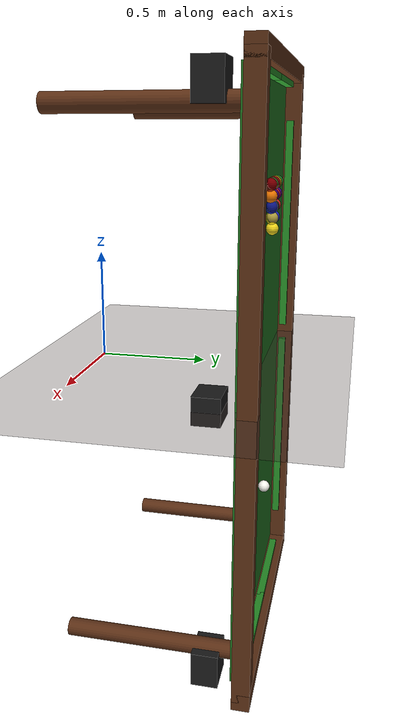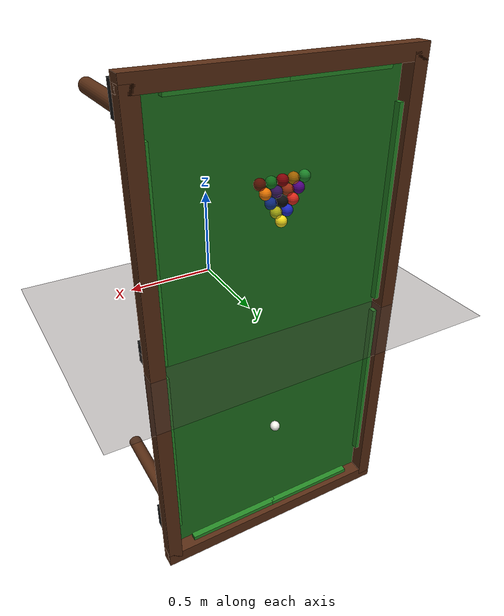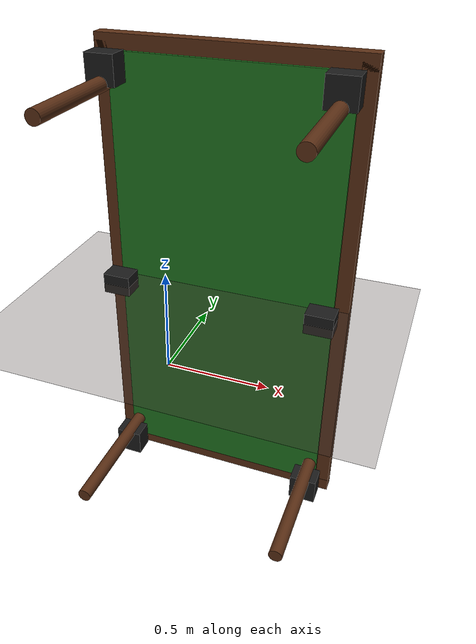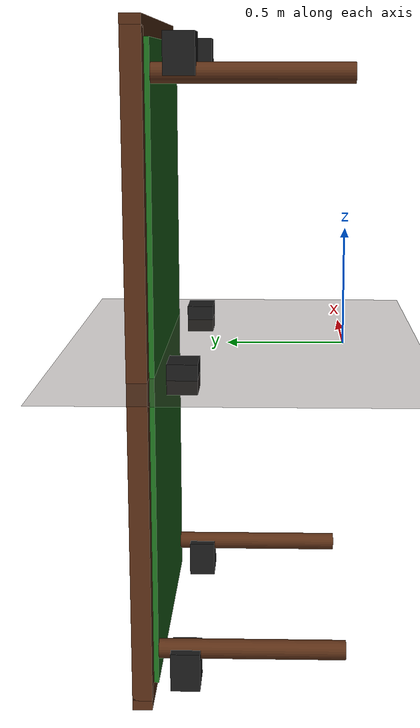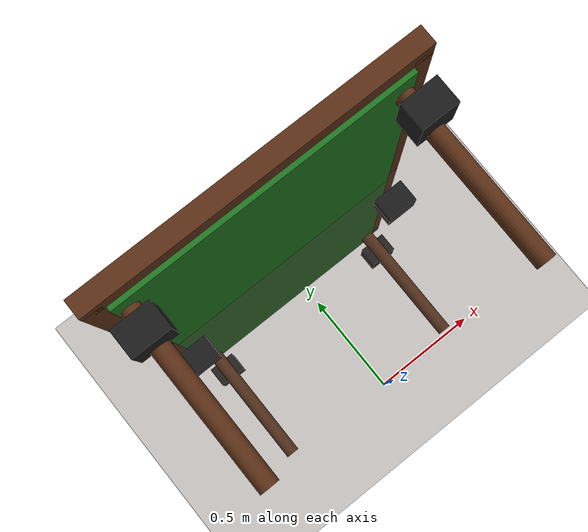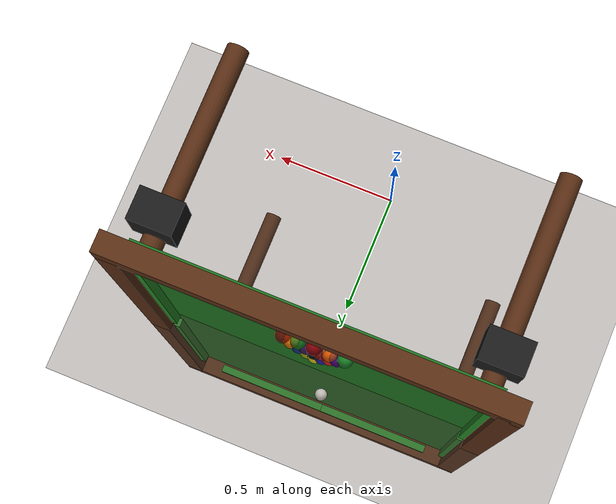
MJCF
<mujoco model="pool_table">

  <!-- SIMULATION OPTIONS                                               -->
  <option timestep="0.001" gravity="0 -9.81 0" integrator="implicit"
          cone="elliptic" noslip_iterations="10">
    <!--
      Small timestep (1ms) for accurate ball-ball collisions
      Elliptic friction cone for realistic rolling
      noslip_iterations prevents balls from sliding when they should roll
    -->
  </option>

  <size nconmax="500" njmax="1000"/>

  <!-- DEFAULTS                                                         -->
  <default>
    <default class="ball">
      <geom type="sphere" size="0.028575"
            mass="0.170"
            friction="0.2 0.005 0.001"
            solref="0.001 1.0"
            solimp="0.95 0.99 0.001"
            condim="6"
            priority="1"
            contype="1" conaffinity="1"/>
      <!--
        friction: sliding=0.2, torsional=0.005, rolling=0.001
        condim=6: full 6D contact (sliding + torsional + rolling)
        This is critical for spin/English to work correctly
      -->
      <joint type="free" damping="0.001" armature="0.00001"/>
    </default>

    <default class="cushion">
      <geom type="box"
            friction="0.4 0.01 0.002"
            solref="0.0005 0.9"
            solimp="0.9 0.95 0.001"
            condim="3"
            contype="1" conaffinity="1"
            rgba="0.15 0.55 0.15 1"/>
      <!--
        Cushion rubber: higher friction, some energy loss
        solref tuned for ~0.85 coefficient of restitution
      -->
    </default>

    <default class="rail">
      <geom type="box"
            contype="1" conaffinity="1"
            friction="0.5 0.01 0.002"
            rgba="0.35 0.18 0.08 1"/>
    </default>

    <default class="slate">
      <geom type="box"
            contype="1" conaffinity="1"
            friction="0.2 0.005 0.001"
            condim="6"
            rgba="0.12 0.45 0.12 1"/>
      <!-- Felt-covered slate: same friction model as ball default -->
    </default>
  </default>

  <!-- ASSETS (replace with your Blender meshes for visual rendering)   -->

  <!-- WORLD                                                            -->
  <worldbody>

    <!-- Floor (below table) -->
    <geom name="floor" type="plane" size="3 3 0.1" pos="0 0 0"
          rgba="0.25 0.2 0.18 1" contype="2" conaffinity="2"/>

    <!-- TABLE BED (slate + felt)                                      -->
    <!-- Playing surface at Y = 0.78m                                  -->
    <geom name="slate" class="slate"
          pos="0 0.77 0" size="0.645 0.01 1.28"/>
    <!--
      size = half-extents: 0.645 = 1.29m/2 (slightly wider than playing area)
      Slate is 2cm thick, top surface at Y = 0.78
    -->

    <!-- CUSHIONS — The rubber bumpers balls bounce off                -->
    <!-- Positioned at ball-center height, angled slightly inward      -->
    <!-- Cushion nose height = 63.5% of ball diameter = 0.0363m       -->
    <!-- Ball center height above slate = 0.028575m (one radius)      -->

    <!-- Long cushions (along Z axis, left and right) -->
    <!-- Each split into 2 segments with gaps for side pockets -->

    <!-- Left cushion, foot half (toward -Z) -->
    <geom name="cushion_L_foot" class="cushion"
          pos="-0.635 0.8085 -0.57" size="0.015 0.018 0.53"/>

    <!-- Left cushion, head half (toward +Z) -->
    <geom name="cushion_L_head" class="cushion"
          pos="-0.635 0.8085 0.57" size="0.015 0.018 0.53"/>

    <!-- Right cushion, foot half -->
    <geom name="cushion_R_foot" class="cushion"
          pos="0.635 0.8085 -0.57" size="0.015 0.018 0.53"/>

    <!-- Right cushion, head half -->
    <geom name="cushion_R_head" class="cushion"
          pos="0.635 0.8085 0.57" size="0.015 0.018 0.53"/>

    <!-- Short cushions (along X axis, foot and head) -->
    <!-- Each split into 2 segments with gaps for corner pockets -->

    <!-- Foot rail cushion (-Z end), left half -->
    <geom name="cushion_foot_L" class="cushion"
          pos="-0.27 0.8085 -1.27" size="0.28 0.018 0.015"/>

    <!-- Foot rail cushion, right half -->
    <geom name="cushion_foot_R" class="cushion"
          pos="0.27 0.8085 -1.27" size="0.28 0.018 0.015"/>

    <!-- Head rail cushion (+Z end), left half -->
    <geom name="cushion_head_L" class="cushion"
          pos="-0.27 0.8085 1.27" size="0.28 0.018 0.015"/>

    <!-- Head rail cushion, right half -->
    <geom name="cushion_head_R" class="cushion"
          pos="0.27 0.8085 1.27" size="0.28 0.018 0.015"/>

    <!-- RAILS — The wooden frame around the table                     -->
    <!-- These are purely structural, balls shouldn't reach them       -->

    <!-- Left rail -->
    <geom name="rail_L" class="rail"
          pos="-0.685 0.82 0" size="0.04 0.04 1.32"/>

    <!-- Right rail -->
    <geom name="rail_R" class="rail"
          pos="0.685 0.82 0" size="0.04 0.04 1.32"/>

    <!-- Foot rail -->
    <geom name="rail_foot" class="rail"
          pos="0 0.82 -1.32" size="0.725 0.04 0.04"/>

    <!-- Head rail -->
    <geom name="rail_head" class="rail"
          pos="0 0.82 1.32" size="0.725 0.04 0.04"/>

    <!-- POCKET CATCHERS — Angled ramps below pocket openings          -->
    <!-- Balls that enter pocket gaps fall off the table bed           -->
    <!-- and are caught by these                                       -->

    <!-- Corner pocket catchers (4) — angled boxes below table surface -->
    <geom name="catch_foot_L" type="box" pos="-0.60 0.65 -1.22" size="0.08 0.06 0.08"
          rgba="0.1 0.1 0.1 1" contype="2" conaffinity="1"/>
    <geom name="catch_foot_R" type="box" pos="0.60 0.65 -1.22" size="0.08 0.06 0.08"
          rgba="0.1 0.1 0.1 1" contype="2" conaffinity="1"/>
    <geom name="catch_head_L" type="box" pos="-0.60 0.65 1.22" size="0.08 0.06 0.08"
          rgba="0.1 0.1 0.1 1" contype="2" conaffinity="1"/>
    <geom name="catch_head_R" type="box" pos="0.60 0.65 1.22" size="0.08 0.06 0.08"
          rgba="0.1 0.1 0.1 1" contype="2" conaffinity="1"/>

    <!-- Side pocket catchers (2) -->
    <geom name="catch_side_L" type="box" pos="-0.60 0.65 0" size="0.08 0.06 0.06"
          rgba="0.1 0.1 0.1 1" contype="2" conaffinity="1"/>
    <geom name="catch_side_R" type="box" pos="0.60 0.65 0" size="0.08 0.06 0.06"
          rgba="0.1 0.1 0.1 1" contype="2" conaffinity="1"/>

    <!-- TABLE LEGS (4) — decorative, not physics-critical             -->
    <geom name="leg_FL" type="cylinder" size="0.04" fromto="-0.60 0 -1.15  -0.60 0.76 -1.15"
          rgba="0.35 0.18 0.08 1" contype="0" conaffinity="0"/>
    <geom name="leg_FR" type="cylinder" size="0.04" fromto="0.60 0 -1.15   0.60 0.76 -1.15"
          rgba="0.35 0.18 0.08 1" contype="0" conaffinity="0"/>
    <geom name="leg_HL" type="cylinder" size="0.04" fromto="-0.60 0 1.15   -0.60 0.76 1.15"
          rgba="0.35 0.18 0.08 1" contype="0" conaffinity="0"/>
    <geom name="leg_HR" type="cylinder" size="0.04" fromto="0.60 0 1.15    0.60 0.76 1.15"
          rgba="0.35 0.18 0.08 1" contype="0" conaffinity="0"/>

    <!-- BALLS                                                         -->
    <!-- Standard 8-ball rack:                                         -->
    <!--   Cue ball at foot spot: (0, 0.8086, -0.635)                 -->
    <!--   Rack apex (1-ball): (0, 0.8086, 0.635)                     -->
    <!--   8-ball in center of third row                               -->
    <!--   Ball spacing: 0.05715m (one ball diameter) + tiny gap       -->
    <!--   Row spacing along Z: 0.0495 (diameter × cos(30°))          -->
    <!--   Column spacing along X: 0.05715 (one diameter)             -->
    <!--   Each row offsets X by ±0.028575 (half ball)                -->
    <!-- Y position: slate top (0.78) + ball radius (0.028575)        -->

    <!-- Cue Ball (white) — at foot spot -->
    <body name="cue_ball" pos="0 0.8086 -0.635">
      <joint class="ball" name="cue_j"/>
      <geom class="ball" name="cue_g" rgba="0.95 0.95 0.92 1"/>
    </body>

    <!-- ======== RACK — 15 balls in triangle ======== -->
    <!-- Row 1 (apex): 1 ball -->
    <body name="ball_1" pos="0 0.8086 0.635">
      <joint class="ball" name="b1_j"/>
      <geom class="ball" name="b1_g" rgba="0.95 0.85 0.1 1"/>  <!-- yellow solid -->
    </body>

    <!-- Row 2: 2 balls -->
    <body name="ball_2" pos="-0.0294 0.8086 0.6845">
      <joint class="ball" name="b2_j"/>
      <geom class="ball" name="b2_g" rgba="0.1 0.15 0.75 1"/>  <!-- blue solid -->
    </body>
    <body name="ball_9" pos="0.0294 0.8086 0.6845">
      <joint class="ball" name="b9_j"/>
      <geom class="ball" name="b9_g" rgba="0.95 0.85 0.1 0.7"/>  <!-- yellow stripe -->
    </body>

    <!-- Row 3: 3 balls (8-ball in center) -->
    <body name="ball_3" pos="-0.0588 0.8086 0.734">
      <joint class="ball" name="b3_j"/>
      <geom class="ball" name="b3_g" rgba="0.85 0.15 0.1 1"/>  <!-- red solid -->
    </body>
    <body name="ball_8" pos="0 0.8086 0.734">
      <joint class="ball" name="b8_j"/>
      <geom class="ball" name="b8_g" rgba="0.05 0.05 0.05 1"/>  <!-- 8-ball BLACK -->
    </body>
    <body name="ball_10" pos="0.0588 0.8086 0.734">
      <joint class="ball" name="b10_j"/>
      <geom class="ball" name="b10_g" rgba="0.1 0.15 0.75 0.7"/>  <!-- blue stripe -->
    </body>

    <!-- Row 4: 4 balls -->
    <body name="ball_4" pos="-0.0882 0.8086 0.7835">
      <joint class="ball" name="b4_j"/>
      <geom class="ball" name="b4_g" rgba="0.3 0.0 0.5 1"/>  <!-- purple solid -->
    </body>
    <body name="ball_11" pos="-0.0294 0.8086 0.7835">
      <joint class="ball" name="b11_j"/>
      <geom class="ball" name="b11_g" rgba="0.85 0.15 0.1 0.7"/>  <!-- red stripe -->
    </body>
    <body name="ball_12" pos="0.0294 0.8086 0.7835">
      <joint class="ball" name="b12_j"/>
      <geom class="ball" name="b12_g" rgba="0.3 0.0 0.5 0.7"/>  <!-- purple stripe -->
    </body>
    <body name="ball_5" pos="0.0882 0.8086 0.7835">
      <joint class="ball" name="b5_j"/>
      <geom class="ball" name="b5_g" rgba="0.9 0.45 0.0 1"/>  <!-- orange solid -->
    </body>

    <!-- Row 5 (back): 5 balls -->
    <body name="ball_6" pos="-0.1176 0.8086 0.833">
      <joint class="ball" name="b6_j"/>
      <geom class="ball" name="b6_g" rgba="0.1 0.5 0.15 1"/>  <!-- green solid -->
    </body>
    <body name="ball_13" pos="-0.0588 0.8086 0.833">
      <joint class="ball" name="b13_j"/>
      <geom class="ball" name="b13_g" rgba="0.9 0.45 0.0 0.7"/>  <!-- orange stripe -->
    </body>
    <body name="ball_7" pos="0 0.8086 0.833">
      <joint class="ball" name="b7_j"/>
      <geom class="ball" name="b7_g" rgba="0.5 0.0 0.02 1"/>  <!-- maroon solid -->
    </body>
    <body name="ball_14" pos="0.0588 0.8086 0.833">
      <joint class="ball" name="b14_j"/>
      <geom class="ball" name="b14_g" rgba="0.1 0.5 0.15 0.7"/>  <!-- green stripe -->
    </body>
    <body name="ball_15" pos="0.1176 0.8086 0.833">
      <joint class="ball" name="b15_j"/>
      <geom class="ball" name="b15_g" rgba="0.5 0.0 0.02 0.7"/>  <!-- maroon stripe -->
    </body>

  </worldbody>

  <!-- CONTACT PAIRS — Fine-tune ball-ball and ball-surface          -->

  <!-- SENSORS (optional) — Track ball positions for scoring         -->
  <sensor>
    <framepos name="cue_pos" objtype="body" objname="cue_ball"/>
    <framepos name="b1_pos" objtype="body" objname="ball_1"/>
    <framepos name="b2_pos" objtype="body" objname="ball_2"/>
    <framepos name="b3_pos" objtype="body" objname="ball_3"/>
    <framepos name="b4_pos" objtype="body" objname="ball_4"/>
    <framepos name="b5_pos" objtype="body" objname="ball_5"/>
    <framepos name="b6_pos" objtype="body" objname="ball_6"/>
    <framepos name="b7_pos" objtype="body" objname="ball_7"/>
    <framepos name="b8_pos" objtype="body" objname="ball_8"/>
    <framepos name="b9_pos" objtype="body" objname="ball_9"/>
    <framepos name="b10_pos" objtype="body" objname="ball_10"/>
    <framepos name="b11_pos" objtype="body" objname="ball_11"/>
    <framepos name="b12_pos" objtype="body" objname="ball_12"/>
    <framepos name="b13_pos" objtype="body" objname="ball_13"/>
    <framepos name="b14_pos" objtype="body" objname="ball_14"/>
    <framepos name="b15_pos" objtype="body" objname="ball_15"/>

    <!-- Velocity sensors for detecting when balls stop -->
    <framexaxis name="cue_vel" objtype="body" objname="cue_ball"/>
  </sensor>

</mujoco>
